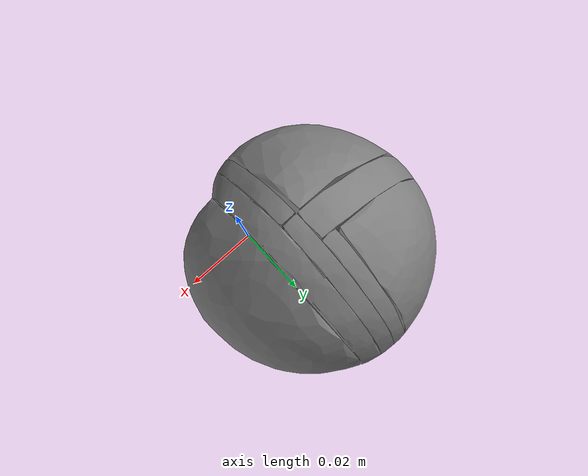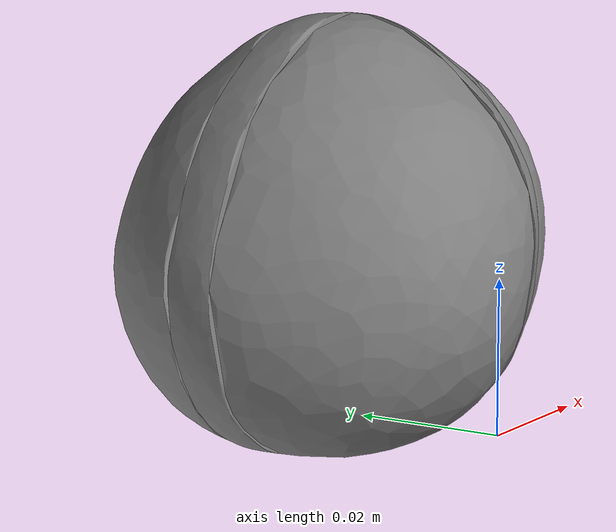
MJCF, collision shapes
<mujoco model="ycb_018_plum">
  <compiler meshdir="meshes" texturedir="meshes" angle="radian"/>
  <default>
    <default class="visual"><geom contype="0" conaffinity="0" group="2" density="0"/></default>
    <default class="collision"><geom group="3"/></default>
  </default>
  <asset>
    <texture name="ycb_018_plum_tex" type="2d" file="ycb_018_plum_texture.png"/>
    <material name="ycb_018_plum_mat" texture="ycb_018_plum_tex" specular="0.2" shininess="0.3"/>
    <mesh name="ycb_018_plum_visual" file="ycb_018_plum_visual.obj"/>
    <mesh name="ycb_018_plum_hull0" file="ycb_018_plum_hull0.obj"/>
    <mesh name="ycb_018_plum_hull1" file="ycb_018_plum_hull1.obj"/>
    <mesh name="ycb_018_plum_hull2" file="ycb_018_plum_hull2.obj"/>
    <mesh name="ycb_018_plum_hull3" file="ycb_018_plum_hull3.obj"/>
    <mesh name="ycb_018_plum_hull4" file="ycb_018_plum_hull4.obj"/>
    <mesh name="ycb_018_plum_hull5" file="ycb_018_plum_hull5.obj"/>
    <mesh name="ycb_018_plum_hull6" file="ycb_018_plum_hull6.obj"/>
    <mesh name="ycb_018_plum_hull7" file="ycb_018_plum_hull7.obj"/>
  </asset>
  <worldbody>
    <body name="object" pos="0 0 0">
      <freejoint name="object_free"/>
      <geom type="mesh" mesh="ycb_018_plum_visual" material="ycb_018_plum_mat" class="visual"/>
      <geom type="mesh" mesh="ycb_018_plum_hull0" class="collision"/>
      <geom type="mesh" mesh="ycb_018_plum_hull1" class="collision"/>
      <geom type="mesh" mesh="ycb_018_plum_hull2" class="collision"/>
      <geom type="mesh" mesh="ycb_018_plum_hull3" class="collision"/>
      <geom type="mesh" mesh="ycb_018_plum_hull4" class="collision"/>
      <geom type="mesh" mesh="ycb_018_plum_hull5" class="collision"/>
      <geom type="mesh" mesh="ycb_018_plum_hull6" class="collision"/>
      <geom type="mesh" mesh="ycb_018_plum_hull7" class="collision"/>
    </body>
  </worldbody>
</mujoco>
